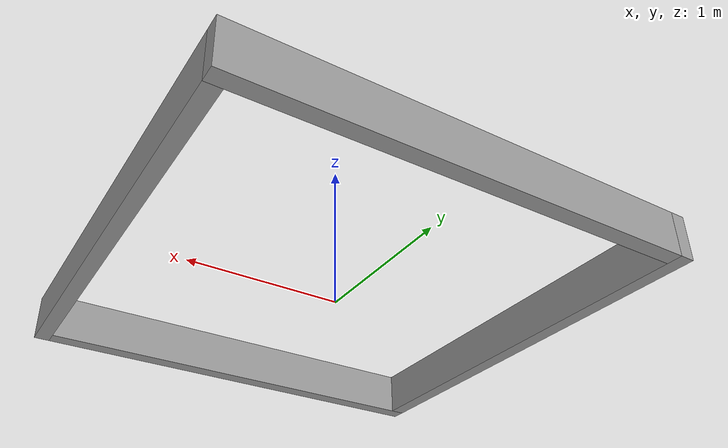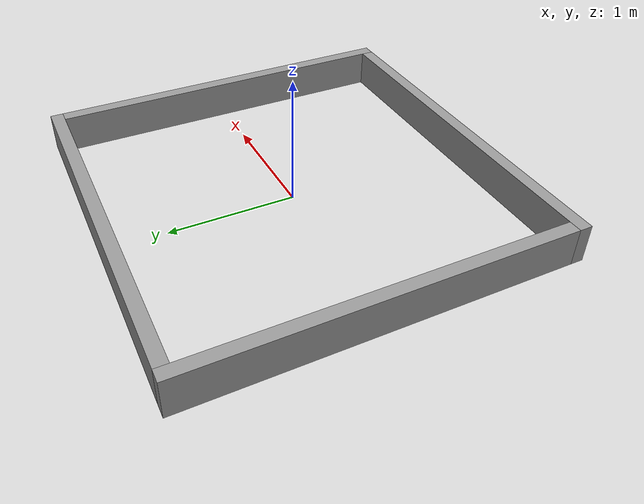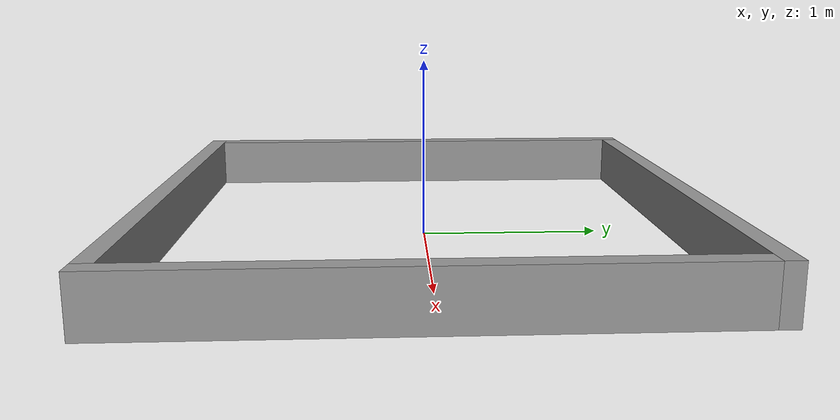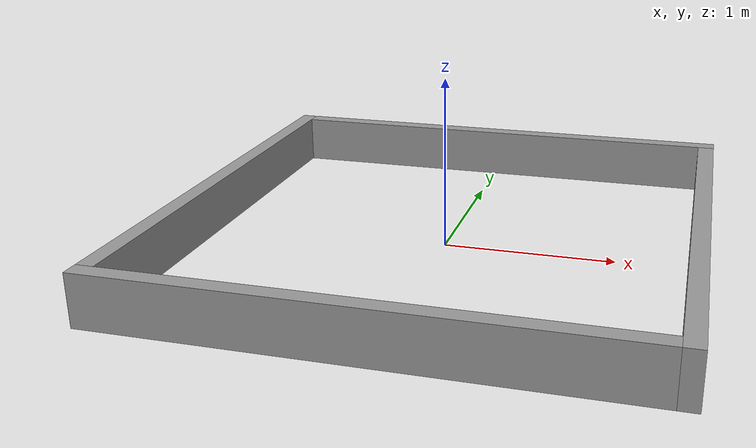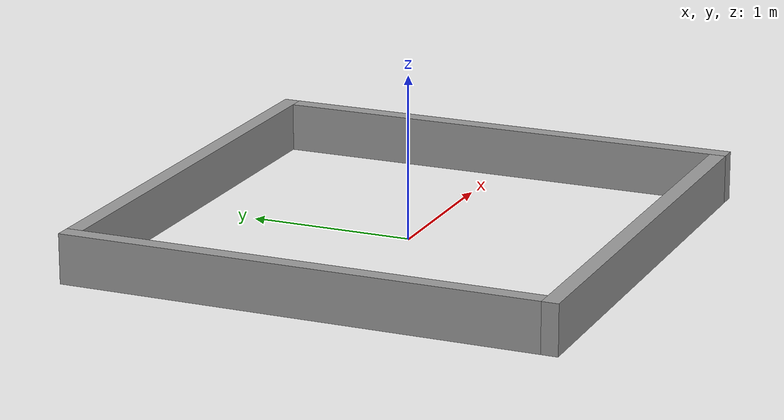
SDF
<?xml version='1.0'?>
<sdf version='1.6'>
  <model name='small_arena_walls'>
    <pose frame=''>0 0 0.15 0 0 0</pose>
    <link name='Right_Wall'>
      <collision name='Right_Wall_Collision'>
        <geometry>
          <box>
            <size>2.90 0.10 0.3</size>
          </box>
        </geometry>
        <pose frame=''>0 0 0 0 0 0</pose>
      </collision>
      <visual name='Right_Wall_Visual'>
        <pose frame=''>0 0 0 0 0 0</pose>
        <geometry>
          <box>
            <size>2.90 0.10 0.3</size>
          </box>
        </geometry>
        <material>
          <script>
            <uri>file://media/materials/scripts/gazebo.material</uri>
            <name>Gazebo/Grey</name>
          </script>
          <ambient>1 1 1 1</ambient>
        </material>
      </visual>
      <pose frame=''>0.05 1.45 0 0 0 0</pose>
    </link>
    <link name='Back_Wall'>
      <collision name='Back_Wall_Collision'>
        <geometry>
          <box>
            <size>2.90 0.10 0.3</size>
          </box>
        </geometry>
        <pose frame=''>0 0 0 0 0 0</pose>
      </collision>
      <visual name='Back_Wall_Visual'>
        <pose frame=''>0 0 0 0 0 0</pose>
        <geometry>
          <box>
            <size>2.90 0.10 0.3</size>
          </box>
        </geometry>
        <material>
          <script>
            <uri>file://media/materials/scripts/gazebo.material</uri>
            <name>Gazebo/Grey</name>
          </script>
          <ambient>1 1 1 1</ambient>
        </material>
      </visual>
      <pose frame=''>-1.45 0.05 0 0 0 1.5708</pose>
    </link>
    <link name='Left_Wall'>
      <collision name='Left_Wall_Collision'>
        <geometry>
          <box>
            <size>2.90 0.10 0.3</size>
          </box>
        </geometry>
        <pose frame=''>0 0 0 0 0 0</pose>
      </collision>
      <visual name='Left_Wall_Visual'>
        <pose frame=''>0 0 0 0 0 0</pose>
        <geometry>
          <box>
            <size>2.90 0.10 0.3</size>
          </box>
        </geometry>
        <material>
          <script>
            <uri>file://media/materials/scripts/gazebo.material</uri>
            <name>Gazebo/Grey</name>
          </script>
          <ambient>1 1 1 1</ambient>
        </material>
      </visual>
      <pose frame=''>-0.05 -1.45 0 0 0 0</pose>
    </link>
    <link name='Front_Wall'>
      <collision name='Front_Wall_Collision'>
        <geometry>
          <box>
            <size>2.90 0.10 0.3</size>
          </box>
        </geometry>
        <pose frame=''>0 0 0 0 0 0</pose>
      </collision>
      <visual name='Front_Wall_Visual'>
        <pose frame=''>0 0 0 0 0 0</pose>
        <geometry>
          <box>
            <size>2.90 0.10 0.3</size>
          </box>
        </geometry>
        <material>
          <script>
            <uri>file://media/materials/scripts/gazebo.material</uri>
            <name>Gazebo/Grey</name>
          </script>
          <ambient>1 1 1 1</ambient>
        </material>
      </visual>
      <pose frame=''>1.45 -0.05 0 0 0 1.5708</pose>
    </link>
    <static>1</static>
  </model>
</sdf>
